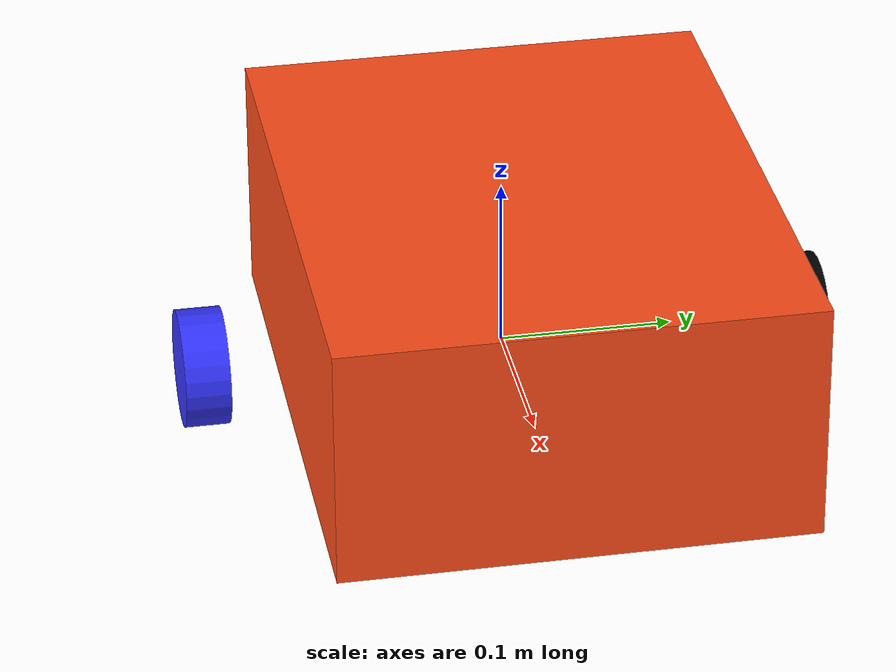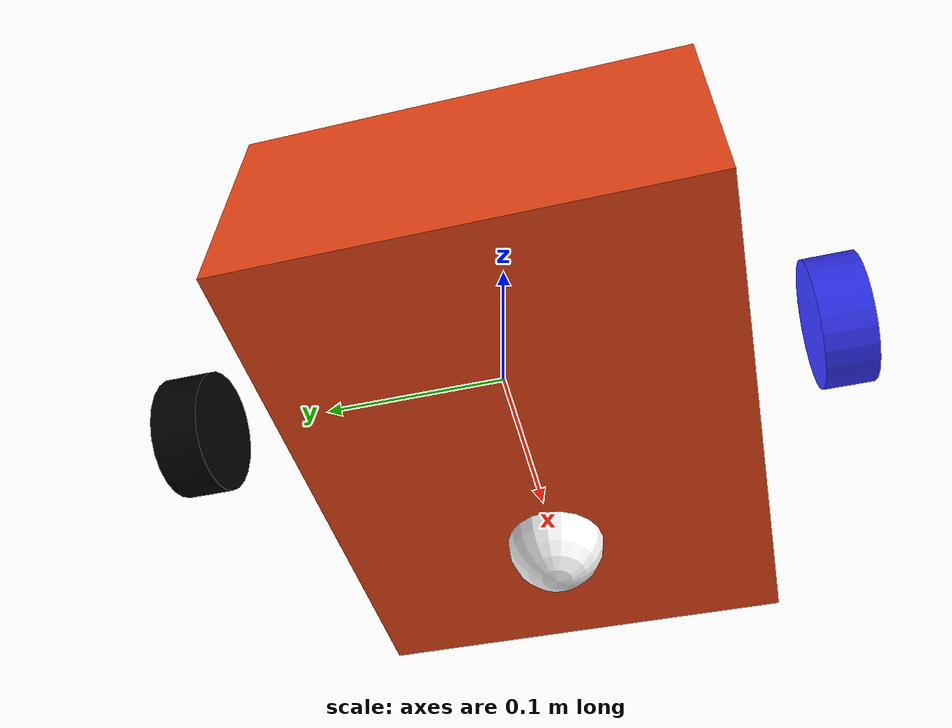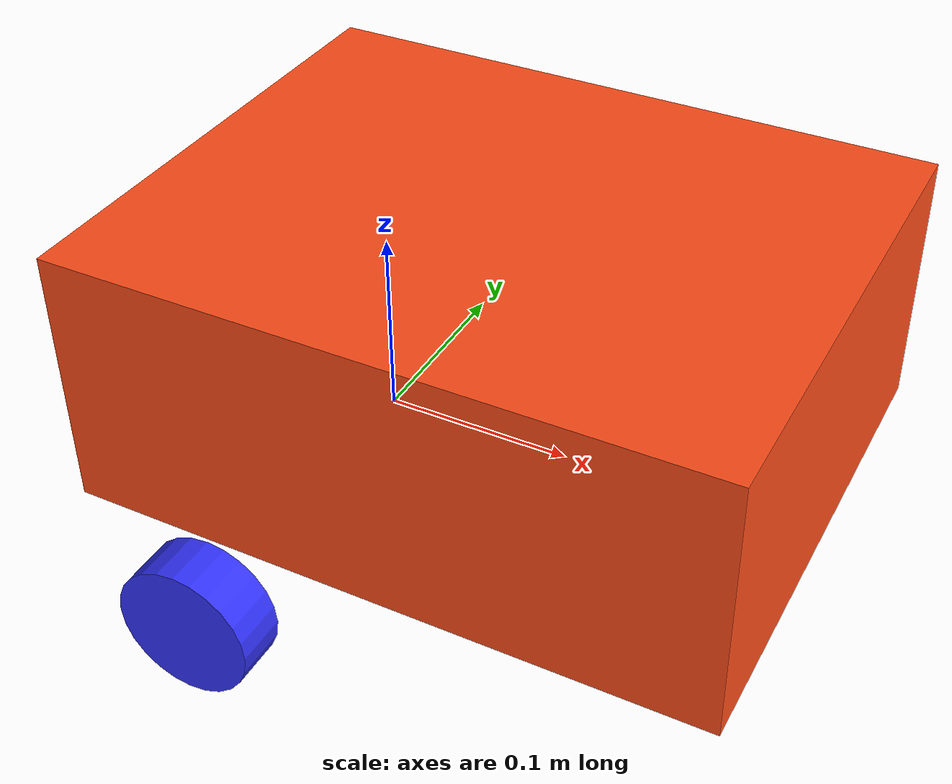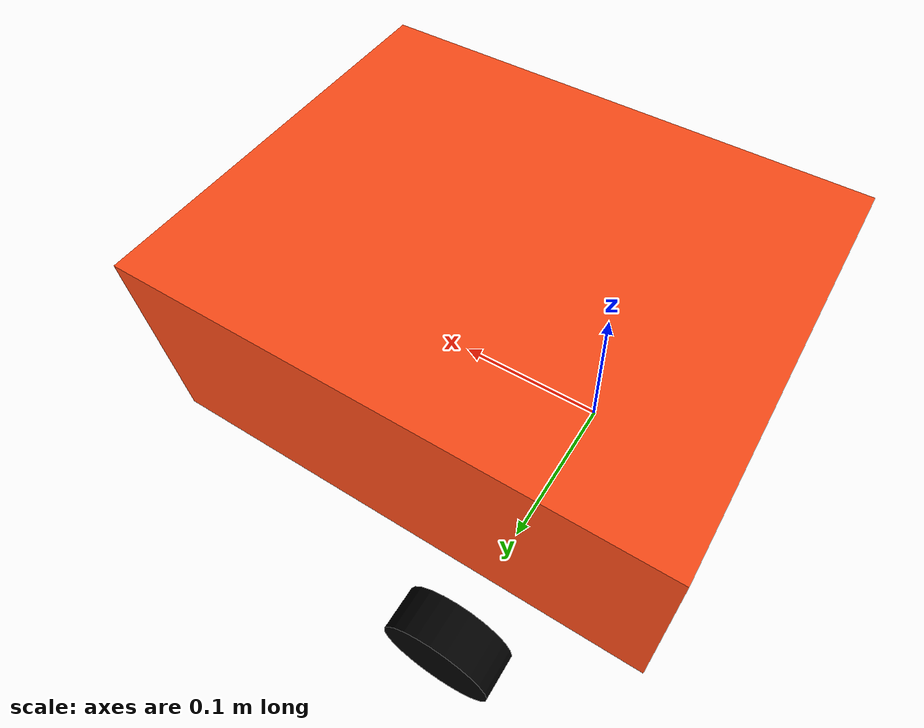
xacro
<?xml version="1.0"?>
<robot xmlns:xacro="http://www.ros.org/wiki/xacro">

    <xacro:include filename="inertial_macros.xacro"/>

    <xacro:property name="chassis_length" value="0.335"/>
    <xacro:property name="chassis_width" value="0.265"/>
    <xacro:property name="chassis_height" value="0.138"/>
    <xacro:property name="chassis_mass" value="1.0"/>
    <xacro:property name="wheel_radius" value="0.034"/>
    <xacro:property name="wheel_thickness" value="0.026"/>
    <xacro:property name="wheel_mass" value="0.05"/>
    <xacro:property name="caster_wheel_radius" value="0.03"/>
    <xacro:property name="caster_wheel_mass" value="0.01"/>

    <material name="black">
        <color rgba="0 0 0 1"/>
    </material>
    <material name="white">
        <color rgba="1 1 1 1"/>
    </material>
    <material name="orange">
        <color rgba="1 0.3 0.1 1"/>
    </material>
    <material name="blue">
        <color rgba="0.2 0.2 1 1"/>
    </material>
    <material name="red">
        <color rgba="1 0 0 1"/>
    </material>

    <!-- base link-->
    <link name ="base_link">

    </link>

    <!-- chassis link-->
    <joint name="chassis_joint" type="fixed">
        <parent link="base_link"/>
        <child link="chassis"/>
        <origin xyz="-0.1 0 0"/>
    </joint>

    <link name="chassis">
        <visual>
            <origin xyz="${chassis_length/2} 0 ${chassis_height/2}"/>
            <geometry>
                <box size="${chassis_length} ${chassis_width} ${chassis_height}"/>
            </geometry>
            <material name="orange"/>
        </visual>
        <collision>
            <origin xyz="${chassis_length/2} 0 ${chassis_height/2}"/>
            <geometry>
                <box size="${chassis_length} ${chassis_width} ${chassis_height}"/>
            </geometry>
            <material name="orange"/>
        </collision>
        <xacro:inertial_box mass="0.5" x="${chassis_length}" y="${chassis_width}" z="${chassis_height}">
            <origin xyz="${chassis_length/2} 0 ${chassis_height/2}" rpy="0 0 0"/>
        </xacro:inertial_box>
    </link>

    <gazebo reference="chassis">
        <material>Gazebo/Orange</material>
    </gazebo>

    <!-- left wheel link-->
    <joint name="left_wheel_joint" type="continuous">
        <origin xyz="0 0.175 0" rpy="-${pi/2} 0 0"/>
        <parent link="base_link"/>
        <child link="left_wheel"/>
        <axis xyz="0 0 1"/>
    </joint>
    <link name="left_wheel">
        <visual>
            <geometry>
                <cylinder radius="${wheel_radius}" length="${wheel_thickness}"/>
            </geometry>
            <material name="black"/>
        </visual>
        <collision>
            <geometry>
                <sphere radius="${wheel_radius}"/>
            </geometry>
            <material name="black"/>
        </collision>
        <xacro:inertial_cylinder mass="${wheel_mass}" length="${wheel_thickness}" radius="${wheel_radius}">
            <origin xyz="0 0 0" rpy="0 0 0 "/>
        </xacro:inertial_cylinder>

    </link>
    <gazebo reference="left_wheel">
        <material>Gazebo/Black</material>
    </gazebo>
    <!-- right wheel link-->
    <joint name="right_wheel_joint" type="continuous">
        <origin xyz="0 -0.175 0" rpy="${pi/2} 0 0"/>
        <parent link="base_link"/>
        <child link="right_wheel"/>
        <axis xyz="0 0 -1"/>
    </joint>
    <link name="right_wheel">
        <visual>
            <geometry>
                <cylinder radius="${wheel_radius}" length="${wheel_thickness}"/>
            </geometry>
            <material name="blue"/>
        </visual>
        <collision>
            <geometry>
                <sphere radius="${wheel_radius}"/>
            </geometry>
        </collision>
        <xacro:inertial_cylinder mass="${wheel_mass}" length="${wheel_thickness}" radius="${wheel_radius}">
            <origin xyz="0 0 0" rpy="0 0 0"/>
        </xacro:inertial_cylinder>
    </link>

    <gazebo reference="right_wheel">
        <material>Gazebo/Black</material>
    </gazebo>

    <!-- caster wheel link -->
     <joint name="caster_wheel_joint" type="fixed">
        <origin xyz="0.24 0 0"/>
        <parent link="chassis"/>
        <child link="caster_wheel"/>
    </joint>
    <link name="caster_wheel">
        <visual>
            <geometry>
                <sphere radius="${caster_wheel_radius}"/>
            </geometry>
            <material name="white"/>
        </visual>
        <collision>
            <geometry>
                <sphere radius="${caster_wheel_radius}"/>
            </geometry>
        </collision>
        <xacro:inertial_sphere mass="${caster_wheel_mass}" radius="${caster_wheel_radius}">
            <origin xyz="0 0 0" rpy="0 0 0"/>
        </xacro:inertial_sphere>
    </link>

    <gazebo reference="caster_wheel">
        <material>Gazebo/White</material>
        <mu1 value="0.001"/>
        <mu2 value="0.001"/>
    </gazebo>

</robot>
